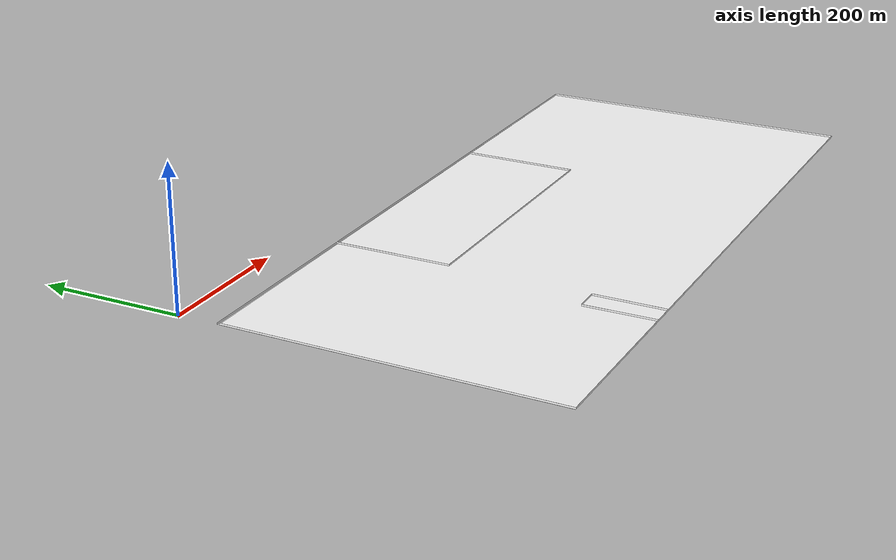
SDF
<?xml version='1.0' encoding='utf-8'?>
<sdf version="1.7">
  <model name="Flaconi_new_Flaconi_map">
    <static>true</static>
    <link name="floor_1">
      <visual name="visual">
        <geometry>
          <mesh>
            <uri>/home/devyani.g/ros2_ws/src/my_package/world/models/Flaconi_new_Flaconi_map/meshes/floor_1.obj</uri>
          </mesh>
        </geometry>
        <material>
          <diffuse>1.0 1.0 1.0</diffuse>
          <specular>0.1 0.1 0.1</specular>
          <pbr>
            <metal>
              <metalness>0.0</metalness>
              <albedo_map>/home/devyani.g/ros2_ws/src/my_package/world/models/Flaconi_new_Flaconi_map/meshes/blue_linoleum.png</albedo_map>
            </metal>
          </pbr>
          <script>
            <uri>/home/devyani.g/ros2_ws/src/my_package/world/models/Flaconi_new_Flaconi_map/meshes</uri>
            <name>floor_1_Diffuse</name>
          </script>
        </material>
      </visual>
      <collision name="collision">
        <geometry>
          <mesh>
            <uri>/home/devyani.g/ros2_ws/src/my_package/world/models/Flaconi_new_Flaconi_map/meshes/floor_1.obj</uri>
          </mesh>
        </geometry>
        <surface>
          <contact>
            <collide_bitmask>0x01</collide_bitmask>
          </contact>
        </surface>
      </collision>
    </link>
    <link name="wall_1">
      <visual name="wall_1">
        <geometry>
          <mesh>
            <uri>/home/devyani.g/ros2_ws/src/my_package/world/models/Flaconi_new_Flaconi_map/meshes/wall_1.obj</uri>
          </mesh>
        </geometry>
        <transparency>0.0</transparency>
        <material>
          <diffuse>1.0 1.0 1.0</diffuse>
          <specular>0.1 0.1 0.1</specular>
          <pbr>
            <metal>
              <metalness>0.0</metalness>
              <albedo_map>/home/devyani.g/ros2_ws/src/my_package/world/models/Flaconi_new_Flaconi_map/meshes/default.png</albedo_map>
            </metal>
          </pbr>
          <script>
            <uri>model://Flaconi_new_Flaconi_map/meshes/</uri>
            <name>wall_1_Diffuse</name>
          </script>
        </material>
      </visual>
      <collision name="collision">
        <geometry>
          <mesh>
            <uri>/home/devyani.g/ros2_ws/src/my_package/world/models/Flaconi_new_Flaconi_map/meshes/wall_1.obj</uri>
          </mesh>
        </geometry>
        <surface>
          <contact>
            <collide_bitmask>0x01</collide_bitmask>
          </contact>
        </surface>
      </collision>
      <pose>-0.051230956930729876 -527.3582309569307 0 0 0 0</pose>
    </link>
  </model>
</sdf>
